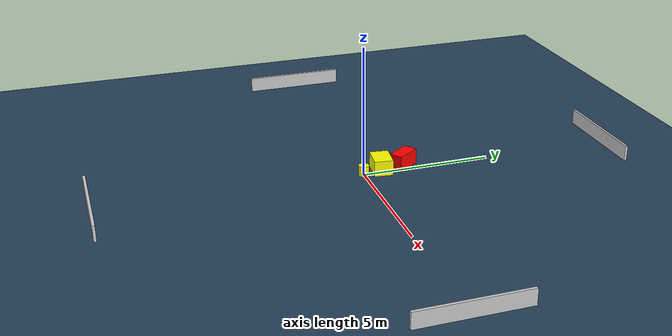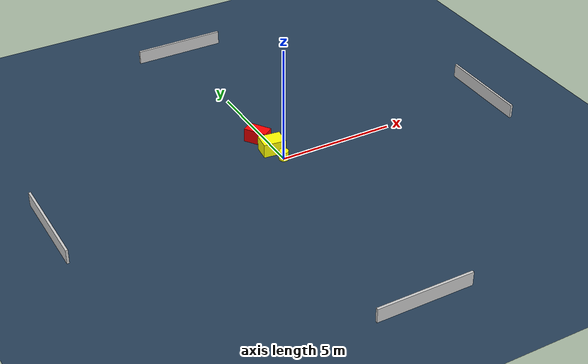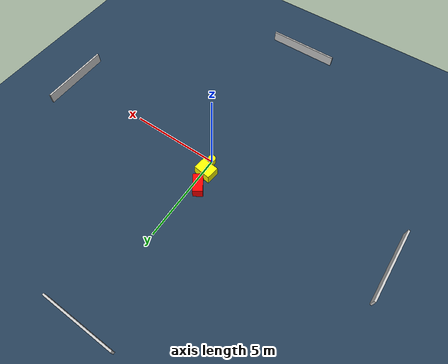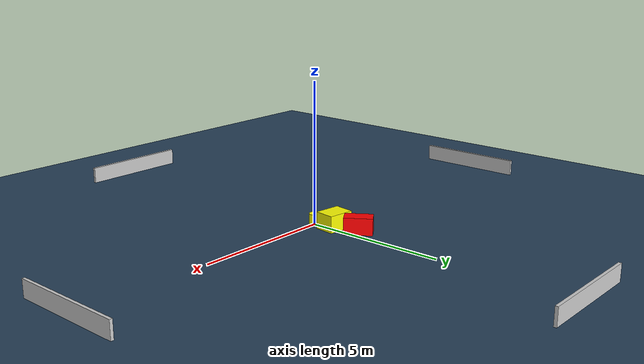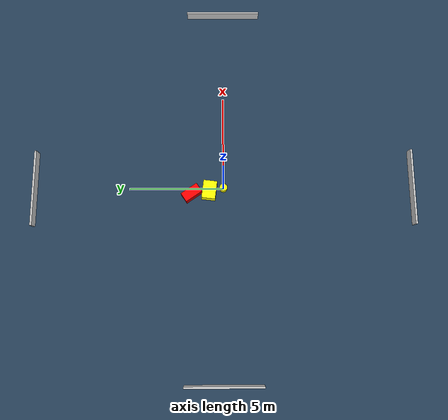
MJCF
<?xml version="1.0" ?>
<mujoco model="generated_environment">
  <option timestep="0.01" integrator="RK4" cone="elliptic"/>
  <default>
    <geom density="1"/>
  </default>
  <asset>
    <texture builtin="gradient" height="3072" name="skybox" rgb1="0.3 0.5 0.7" rgb2="0 0 0" type="skybox" width="512"/>
    <texture builtin="checker" height="300" name="groundplane" rgb1="0.2 0.3 0.4" rgb2="0.1 0.2 0.3" type="2d" width="300"/>
    <material name="groundplane" reflectance="0.2" texrepeat="5 5" texture="groundplane"/>
  </asset>
  <worldbody>
    <light dir="0 0 -1" directional="true" pos="0 0 1.5"/>
    <geom condim="3" friction="0.5 0.005 0.001" material="groundplane" name="floor" pos="0 0 0" size="0 0 0.05" type="plane"/>
    <body name="walls">
      <geom name="wall_1" condim="4" pos="-10.0 0.0 0.3" rgba="0.800000011920929 0.800000011920929 0.800000011920929 1.0" size="0.05 2.0 0.3" type="box"/>
      <geom name="wall_2" condim="4" pos="10.0 0.0 0.3" rgba="0.800000011920929 0.800000011920929 0.800000011920929 1.0" size="0.05 2.0 0.3" type="box"/>
      <geom name="wall_3" condim="4" pos="0.0 -10.0 0.3" rgba="0.800000011920929 0.800000011920929 0.800000011920929 1.0" size="2.0 0.05 0.3" type="box"/>
      <geom name="wall_4" condim="4" pos="0.0 10.0 0.3" rgba="0.800000011920929 0.800000011920929 0.800000011920929 1.0" size="2.0 0.05 0.3" type="box"/>
    </body>
    <body name="robot">
      <joint name="joint_x" type="slide" pos="0 0 0" axis="1 0 0"/>
      <joint name="joint_y" type="slide" pos="0 0 0" axis="0 1 0"/>
      <geom name="robot" type="cylinder" pos="0.0 0.0 0.2" size="0.2 0.2 0.0" mass="5.0" friction="1.0 0.005 0.0001" condim="4" rgba="1.0 1.0 0.0 1.0"/>
    </body>
    <body name="obstacle_1_movable">
      <geom name="obstacle_1_movable" condim="4" pos="-0.1441501738910232 0.7455036711824634 0.3" euler="0 0 353.0091197331995" friction="0.0 0.005 0.001" rgba="1.0 1.0 0.0 1.0" size="0.4746640537237499 0.3589503359684807 0.3" type="box" mass="0.1"/>
      <joint type="free"/>
    </body>
    <body name="obstacle_2_static">
      <geom name="obstacle_2_static" condim="4" pos="-0.29989858165013866 1.6829699053975324 0.3" euler="0 0 124.17612689223047" friction="0.0 0.005 0.001" rgba="1.0 0.0 0.0 1.0" size="0.4937500162717924 0.26391705280816385 0.3" type="box"/>
    </body>
  </worldbody>
  <actuator>
    <motor name="actuator_x" joint="joint_x" gear="1" ctrlrange="-1 1"/>
    <motor name="actuator_y" joint="joint_y" gear="1" ctrlrange="-1 1"/>
  </actuator>
</mujoco>
